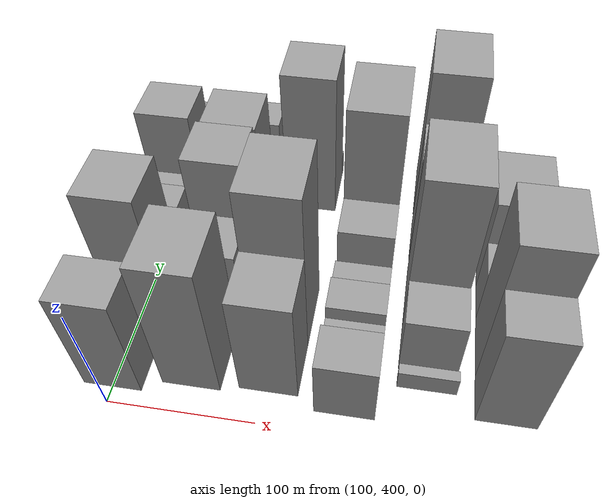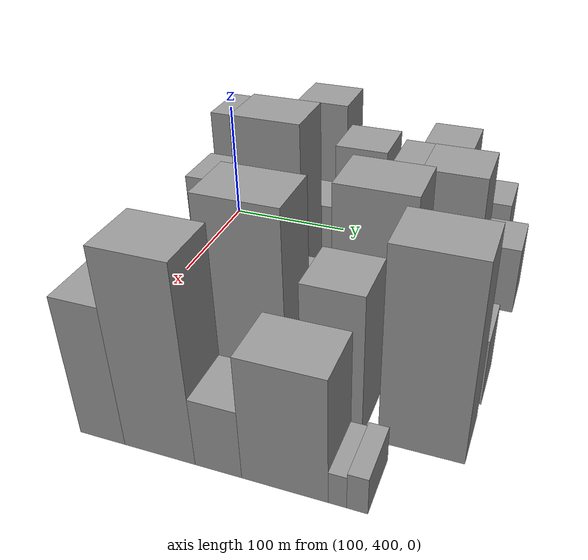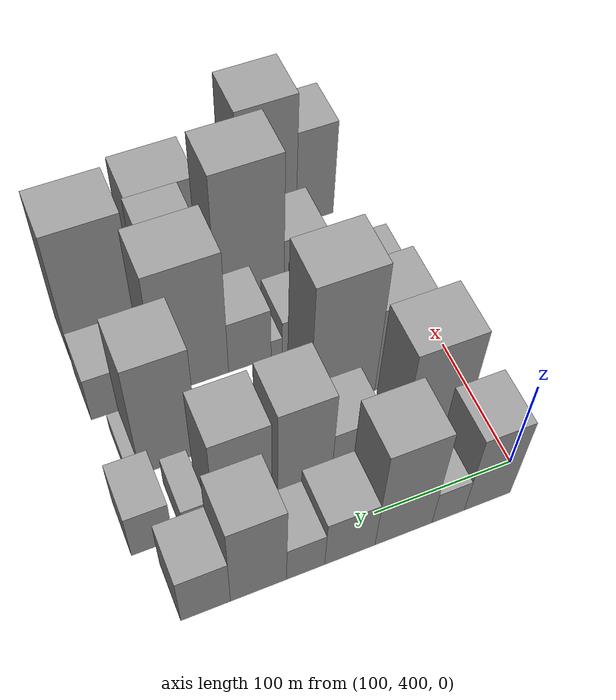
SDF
<sdf version="1.6">
 <world name="default">
  <model name="building_34">
   <static>1</static>
   <pose>100.0000 427.9122 0 0.000000 0.000000 0.000000</pose>
   <link name="link">
    <pose>0 0 48.00 0 0 0</pose>
    <collision name="collision"><geometry><box><size>40.0000 34.0366 96.0000</size></box></geometry></collision>
    <visual name="visual">
     <cast_shadows>0</cast_shadows>
     <geometry><box><size>40.0000 34.0366 96.0000</size></box></geometry>
     <material>
      <script>
       <uri>model://grey_wall/materials/scripts</uri>
       <uri>model://grey_wall/materials/textures</uri>
       <name>vrc/grey_wall</name>
      </script>
     </material>
    </visual>
   </link>
  </model>
  <model name="building_35">
   <static>1</static>
   <pose>100.0000 456.6429 0 0.000000 0.000000 0.000000</pose>
   <link name="link">
    <pose>0 0 21.00 0 0 0</pose>
    <collision name="collision"><geometry><box><size>40.0000 23.4248 42.0000</size></box></geometry></collision>
    <visual name="visual">
     <cast_shadows>0</cast_shadows>
     <geometry><box><size>40.0000 23.4248 42.0000</size></box></geometry>
     <material>
      <script>
       <uri>model://grey_wall/materials/scripts</uri>
       <uri>model://grey_wall/materials/textures</uri>
       <name>vrc/grey_wall</name>
      </script>
     </material>
    </visual>
   </link>
  </model>
  <model name="building_36">
   <static>1</static>
   <pose>100.0000 488.7600 0 0.000000 0.000000 0.000000</pose>
   <link name="link">
    <pose>0 0 61.50 0 0 0</pose>
    <collision name="collision"><geometry><box><size>40.0000 40.8094 123.0000</size></box></geometry></collision>
    <visual name="visual">
     <cast_shadows>0</cast_shadows>
     <geometry><box><size>40.0000 40.8094 123.0000</size></box></geometry>
     <material>
      <script>
       <uri>model://grey_wall/materials/scripts</uri>
       <uri>model://grey_wall/materials/textures</uri>
       <name>vrc/grey_wall</name>
      </script>
     </material>
    </visual>
   </link>
  </model>
  <model name="building_37">
   <static>1</static>
   <pose>100.0000 526.7805 0 0.000000 0.000000 0.000000</pose>
   <link name="link">
    <pose>0 0 30.00 0 0 0</pose>
    <collision name="collision"><geometry><box><size>40.0000 35.2316 60.0000</size></box></geometry></collision>
    <visual name="visual">
     <cast_shadows>0</cast_shadows>
     <geometry><box><size>40.0000 35.2316 60.0000</size></box></geometry>
     <material>
      <script>
       <uri>model://grey_wall/materials/scripts</uri>
       <uri>model://grey_wall/materials/textures</uri>
       <name>vrc/grey_wall</name>
      </script>
     </material>
    </visual>
   </link>
  </model>
  <model name="building_38">
   <static>1</static>
   <pose>100.0000 557.5161 0 0.000000 0.000000 0.000000</pose>
   <link name="link">
    <pose>0 0 22.50 0 0 0</pose>
    <collision name="collision"><geometry><box><size>40.0000 26.2396 45.0000</size></box></geometry></collision>
    <visual name="visual">
     <cast_shadows>0</cast_shadows>
     <geometry><box><size>40.0000 26.2396 45.0000</size></box></geometry>
     <material>
      <script>
       <uri>model://grey_wall/materials/scripts</uri>
       <uri>model://grey_wall/materials/textures</uri>
       <name>vrc/grey_wall</name>
      </script>
     </material>
    </visual>
   </link>
  </model>
  <model name="building_39">
   <static>1</static>
   <pose>100.0000 589.5145 0 0.000000 0.000000 0.000000</pose>
   <link name="link">
    <pose>0 0 51.00 0 0 0</pose>
    <collision name="collision"><geometry><box><size>40.0000 37.7572 102.0000</size></box></geometry></collision>
    <visual name="visual">
     <cast_shadows>0</cast_shadows>
     <geometry><box><size>40.0000 37.7572 102.0000</size></box></geometry>
     <material>
      <script>
       <uri>model://grey_wall/materials/scripts</uri>
       <uri>model://grey_wall/materials/textures</uri>
       <name>vrc/grey_wall</name>
      </script>
     </material>
    </visual>
   </link>
  </model>
  <model name="building_40">
   <static>1</static>
   <pose>100.0000 624.8641 0 0.000000 0.000000 0.000000</pose>
   <link name="link">
    <pose>0 0 30.00 0 0 0</pose>
    <collision name="collision"><geometry><box><size>40.0000 32.9421 60.0000</size></box></geometry></collision>
    <visual name="visual">
     <cast_shadows>0</cast_shadows>
     <geometry><box><size>40.0000 32.9421 60.0000</size></box></geometry>
     <material>
      <script>
       <uri>model://grey_wall/materials/scripts</uri>
       <uri>model://grey_wall/materials/textures</uri>
       <name>vrc/grey_wall</name>
      </script>
     </material>
    </visual>
   </link>
  </model>
  <model name="building_86">
   <static>1</static>
   <pose>152.0000 442.8863 0 0.000000 0.000000 0.000000</pose>
   <link name="link">
    <pose>0 0 63.00 0 0 0</pose>
    <collision name="collision"><geometry><box><size>40.0000 47.3491 126.0000</size></box></geometry></collision>
    <visual name="visual">
     <cast_shadows>0</cast_shadows>
     <geometry><box><size>40.0000 47.3491 126.0000</size></box></geometry>
     <material>
      <script>
       <uri>model://grey_wall/materials/scripts</uri>
       <uri>model://grey_wall/materials/textures</uri>
       <name>vrc/grey_wall</name>
      </script>
     </material>
    </visual>
   </link>
  </model>
  <model name="building_87">
   <static>1</static>
   <pose>152.0000 473.4281 0 0.000000 0.000000 0.000000</pose>
   <link name="link">
    <pose>0 0 9.00 0 0 0</pose>
    <collision name="collision"><geometry><box><size>40.0000 7.7345 18.0000</size></box></geometry></collision>
    <visual name="visual">
     <cast_shadows>0</cast_shadows>
     <geometry><box><size>40.0000 7.7345 18.0000</size></box></geometry>
     <material>
      <script>
       <uri>model://grey_wall/materials/scripts</uri>
       <uri>model://grey_wall/materials/textures</uri>
       <name>vrc/grey_wall</name>
      </script>
     </material>
    </visual>
   </link>
  </model>
  <model name="building_88">
   <static>1</static>
   <pose>152.0000 499.1810 0 0.000000 0.000000 0.000000</pose>
   <link name="link">
    <pose>0 0 31.50 0 0 0</pose>
    <collision name="collision"><geometry><box><size>40.0000 35.7713 63.0000</size></box></geometry></collision>
    <visual name="visual">
     <cast_shadows>0</cast_shadows>
     <geometry><box><size>40.0000 35.7713 63.0000</size></box></geometry>
     <material>
      <script>
       <uri>model://grey_wall/materials/scripts</uri>
       <uri>model://grey_wall/materials/textures</uri>
       <name>vrc/grey_wall</name>
      </script>
     </material>
    </visual>
   </link>
  </model>
  <model name="building_89">
   <static>1</static>
   <pose>152.0000 536.2811 0 0.000000 0.000000 0.000000</pose>
   <link name="link">
    <pose>0 0 57.00 0 0 0</pose>
    <collision name="collision"><geometry><box><size>40.0000 38.4290 114.0000</size></box></geometry></collision>
    <visual name="visual">
     <cast_shadows>0</cast_shadows>
     <geometry><box><size>40.0000 38.4290 114.0000</size></box></geometry>
     <material>
      <script>
       <uri>model://grey_wall/materials/scripts</uri>
       <uri>model://grey_wall/materials/textures</uri>
       <name>vrc/grey_wall</name>
      </script>
     </material>
    </visual>
   </link>
  </model>
  <model name="building_90">
   <static>1</static>
   <pose>152.0000 579.6024 0 0.000000 0.000000 0.000000</pose>
   <link name="link">
    <pose>0 0 54.00 0 0 0</pose>
    <collision name="collision"><geometry><box><size>40.0000 40.2136 108.0000</size></box></geometry></collision>
    <visual name="visual">
     <cast_shadows>0</cast_shadows>
     <geometry><box><size>40.0000 40.2136 108.0000</size></box></geometry>
     <material>
      <script>
       <uri>model://grey_wall/materials/scripts</uri>
       <uri>model://grey_wall/materials/textures</uri>
       <name>vrc/grey_wall</name>
      </script>
     </material>
    </visual>
   </link>
  </model>
  <model name="building_91">
   <static>1</static>
   <pose>152.0000 611.7442 0 0.000000 0.000000 0.000000</pose>
   <link name="link">
    <pose>0 0 18.00 0 0 0</pose>
    <collision name="collision"><geometry><box><size>40.0000 18.0702 36.0000</size></box></geometry></collision>
    <visual name="visual">
     <cast_shadows>0</cast_shadows>
     <geometry><box><size>40.0000 18.0702 36.0000</size></box></geometry>
     <material>
      <script>
       <uri>model://grey_wall/materials/scripts</uri>
       <uri>model://grey_wall/materials/textures</uri>
       <name>vrc/grey_wall</name>
      </script>
     </material>
    </visual>
   </link>
  </model>
  <model name="building_92">
   <static>1</static>
   <pose>152.0000 642.0185 0 0.000000 0.000000 0.000000</pose>
   <link name="link">
    <pose>0 0 27.00 0 0 0</pose>
    <collision name="collision"><geometry><box><size>40.0000 28.4783 54.0000</size></box></geometry></collision>
    <visual name="visual">
     <cast_shadows>0</cast_shadows>
     <geometry><box><size>40.0000 28.4783 54.0000</size></box></geometry>
     <material>
      <script>
       <uri>model://grey_wall/materials/scripts</uri>
       <uri>model://grey_wall/materials/textures</uri>
       <name>vrc/grey_wall</name>
      </script>
     </material>
    </visual>
   </link>
  </model>
  <model name="building_142">
   <static>1</static>
   <pose>204.0000 442.1037 0 0.000000 0.000000 0.000000</pose>
   <link name="link">
    <pose>0 0 49.50 0 0 0</pose>
    <collision name="collision"><geometry><box><size>40.0000 38.1421 99.0000</size></box></geometry></collision>
    <visual name="visual">
     <cast_shadows>0</cast_shadows>
     <geometry><box><size>40.0000 38.1421 99.0000</size></box></geometry>
     <material>
      <script>
       <uri>model://grey_wall/materials/scripts</uri>
       <uri>model://grey_wall/materials/textures</uri>
       <name>vrc/grey_wall</name>
      </script>
     </material>
    </visual>
   </link>
  </model>
  <model name="building_143">
   <static>1</static>
   <pose>204.0000 485.7362 0 0.000000 0.000000 0.000000</pose>
   <link name="link">
    <pose>0 0 75.00 0 0 0</pose>
    <collision name="collision"><geometry><box><size>40.0000 49.1228 150.0000</size></box></geometry></collision>
    <visual name="visual">
     <cast_shadows>0</cast_shadows>
     <geometry><box><size>40.0000 49.1228 150.0000</size></box></geometry>
     <material>
      <script>
       <uri>model://grey_wall/materials/scripts</uri>
       <uri>model://grey_wall/materials/textures</uri>
       <name>vrc/grey_wall</name>
      </script>
     </material>
    </visual>
   </link>
  </model>
  <model name="building_144">
   <static>1</static>
   <pose>204.0000 612.0399 0 0.000000 0.000000 0.000000</pose>
   <link name="link">
    <pose>0 0 66.00 0 0 0</pose>
    <collision name="collision"><geometry><box><size>40.0000 41.8282 132.0000</size></box></geometry></collision>
    <visual name="visual">
     <cast_shadows>0</cast_shadows>
     <geometry><box><size>40.0000 41.8282 132.0000</size></box></geometry>
     <material>
      <script>
       <uri>model://grey_wall/materials/scripts</uri>
       <uri>model://grey_wall/materials/textures</uri>
       <name>vrc/grey_wall</name>
      </script>
     </material>
    </visual>
   </link>
  </model>
  <model name="building_145">
   <static>1</static>
   <pose>204.0000 637.1985 0 0.000000 0.000000 0.000000</pose>
   <link name="link">
    <pose>0 0 10.50 0 0 0</pose>
    <collision name="collision"><geometry><box><size>40.0000 8.4888 21.0000</size></box></geometry></collision>
    <visual name="visual">
     <cast_shadows>0</cast_shadows>
     <geometry><box><size>40.0000 8.4888 21.0000</size></box></geometry>
     <material>
      <script>
       <uri>model://grey_wall/materials/scripts</uri>
       <uri>model://grey_wall/materials/textures</uri>
       <name>vrc/grey_wall</name>
      </script>
     </material>
    </visual>
   </link>
  </model>
  <model name="building_187">
   <static>1</static>
   <pose>256.0000 429.3830 0 0.000000 0.000000 0.000000</pose>
   <link name="link">
    <pose>0 0 28.50 0 0 0</pose>
    <collision name="collision"><geometry><box><size>40.0000 30.1773 57.0000</size></box></geometry></collision>
    <visual name="visual">
     <cast_shadows>0</cast_shadows>
     <geometry><box><size>40.0000 30.1773 57.0000</size></box></geometry>
     <material>
      <script>
       <uri>model://grey_wall/materials/scripts</uri>
       <uri>model://grey_wall/materials/textures</uri>
       <name>vrc/grey_wall</name>
      </script>
     </material>
    </visual>
   </link>
  </model>
  <model name="building_188">
   <static>1</static>
   <pose>256.0000 453.9864 0 0.000000 0.000000 0.000000</pose>
   <link name="link">
    <pose>0 0 18.00 0 0 0</pose>
    <collision name="collision"><geometry><box><size>40.0000 19.0295 36.0000</size></box></geometry></collision>
    <visual name="visual">
     <cast_shadows>0</cast_shadows>
     <geometry><box><size>40.0000 19.0295 36.0000</size></box></geometry>
     <material>
      <script>
       <uri>model://grey_wall/materials/scripts</uri>
       <uri>model://grey_wall/materials/textures</uri>
       <name>vrc/grey_wall</name>
      </script>
     </material>
    </visual>
   </link>
  </model>
  <model name="building_189">
   <static>1</static>
   <pose>256.0000 475.8625 0 0.000000 0.000000 0.000000</pose>
   <link name="link">
    <pose>0 0 24.00 0 0 0</pose>
    <collision name="collision"><geometry><box><size>40.0000 24.7225 48.0000</size></box></geometry></collision>
    <visual name="visual">
     <cast_shadows>0</cast_shadows>
     <geometry><box><size>40.0000 24.7225 48.0000</size></box></geometry>
     <material>
      <script>
       <uri>model://grey_wall/materials/scripts</uri>
       <uri>model://grey_wall/materials/textures</uri>
       <name>vrc/grey_wall</name>
      </script>
     </material>
    </visual>
   </link>
  </model>
  <model name="building_190">
   <static>1</static>
   <pose>256.0000 498.8279 0 0.000000 0.000000 0.000000</pose>
   <link name="link">
    <pose>0 0 19.50 0 0 0</pose>
    <collision name="collision"><geometry><box><size>40.0000 21.2084 39.0000</size></box></geometry></collision>
    <visual name="visual">
     <cast_shadows>0</cast_shadows>
     <geometry><box><size>40.0000 21.2084 39.0000</size></box></geometry>
     <material>
      <script>
       <uri>model://grey_wall/materials/scripts</uri>
       <uri>model://grey_wall/materials/textures</uri>
       <name>vrc/grey_wall</name>
      </script>
     </material>
    </visual>
   </link>
  </model>
  <model name="building_191">
   <static>1</static>
   <pose>256.0000 513.7022 0 0.000000 0.000000 0.000000</pose>
   <link name="link">
    <pose>0 0 10.50 0 0 0</pose>
    <collision name="collision"><geometry><box><size>40.0000 8.5403 21.0000</size></box></geometry></collision>
    <visual name="visual">
     <cast_shadows>0</cast_shadows>
     <geometry><box><size>40.0000 8.5403 21.0000</size></box></geometry>
     <material>
      <script>
       <uri>model://grey_wall/materials/scripts</uri>
       <uri>model://grey_wall/materials/textures</uri>
       <name>vrc/grey_wall</name>
      </script>
     </material>
    </visual>
   </link>
  </model>
  <model name="building_192">
   <static>1</static>
   <pose>256.0000 534.0623 0 0.000000 0.000000 0.000000</pose>
   <link name="link">
    <pose>0 0 30.00 0 0 0</pose>
    <collision name="collision"><geometry><box><size>40.0000 32.1798 60.0000</size></box></geometry></collision>
    <visual name="visual">
     <cast_shadows>0</cast_shadows>
     <geometry><box><size>40.0000 32.1798 60.0000</size></box></geometry>
     <material>
      <script>
       <uri>model://grey_wall/materials/scripts</uri>
       <uri>model://grey_wall/materials/textures</uri>
       <name>vrc/grey_wall</name>
      </script>
     </material>
    </visual>
   </link>
  </model>
  <model name="building_193">
   <static>1</static>
   <pose>256.0000 576.2401 0 0.000000 0.000000 0.000000</pose>
   <link name="link">
    <pose>0 0 70.50 0 0 0</pose>
    <collision name="collision"><geometry><box><size>40.0000 52.1758 141.0000</size></box></geometry></collision>
    <visual name="visual">
     <cast_shadows>0</cast_shadows>
     <geometry><box><size>40.0000 52.1758 141.0000</size></box></geometry>
     <material>
      <script>
       <uri>model://grey_wall/materials/scripts</uri>
       <uri>model://grey_wall/materials/textures</uri>
       <name>vrc/grey_wall</name>
      </script>
     </material>
    </visual>
   </link>
  </model>
  <model name="building_194">
   <static>1</static>
   <pose>256.0000 612.5407 0 0.000000 0.000000 0.000000</pose>
   <link name="link">
    <pose>0 0 18.00 0 0 0</pose>
    <collision name="collision"><geometry><box><size>40.0000 20.4254 36.0000</size></box></geometry></collision>
    <visual name="visual">
     <cast_shadows>0</cast_shadows>
     <geometry><box><size>40.0000 20.4254 36.0000</size></box></geometry>
     <material>
      <script>
       <uri>model://grey_wall/materials/scripts</uri>
       <uri>model://grey_wall/materials/textures</uri>
       <name>vrc/grey_wall</name>
      </script>
     </material>
    </visual>
   </link>
  </model>
  <model name="building_195">
   <static>1</static>
   <pose>256.0000 636.8043 0 0.000000 0.000000 0.000000</pose>
   <link name="link">
    <pose>0 0 25.50 0 0 0</pose>
    <collision name="collision"><geometry><box><size>40.0000 28.1018 51.0000</size></box></geometry></collision>
    <visual name="visual">
     <cast_shadows>0</cast_shadows>
     <geometry><box><size>40.0000 28.1018 51.0000</size></box></geometry>
     <material>
      <script>
       <uri>model://grey_wall/materials/scripts</uri>
       <uri>model://grey_wall/materials/textures</uri>
       <name>vrc/grey_wall</name>
      </script>
     </material>
    </visual>
   </link>
  </model>
  <model name="building_238">
   <static>1</static>
   <pose>308.0000 443.9276 0 0.000000 0.000000 0.000000</pose>
   <link name="link">
    <pose>0 0 9.00 0 0 0</pose>
    <collision name="collision"><geometry><box><size>40.0000 7.4776 18.0000</size></box></geometry></collision>
    <visual name="visual">
     <cast_shadows>0</cast_shadows>
     <geometry><box><size>40.0000 7.4776 18.0000</size></box></geometry>
     <material>
      <script>
       <uri>model://grey_wall/materials/scripts</uri>
       <uri>model://grey_wall/materials/textures</uri>
       <name>vrc/grey_wall</name>
      </script>
     </material>
    </visual>
   </link>
  </model>
  <model name="building_239">
   <static>1</static>
   <pose>308.0000 470.1644 0 0.000000 0.000000 0.000000</pose>
   <link name="link">
    <pose>0 0 28.50 0 0 0</pose>
    <collision name="collision"><geometry><box><size>40.0000 32.9960 57.0000</size></box></geometry></collision>
    <visual name="visual">
     <cast_shadows>0</cast_shadows>
     <geometry><box><size>40.0000 32.9960 57.0000</size></box></geometry>
     <material>
      <script>
       <uri>model://grey_wall/materials/scripts</uri>
       <uri>model://grey_wall/materials/textures</uri>
       <name>vrc/grey_wall</name>
      </script>
     </material>
    </visual>
   </link>
  </model>
  <model name="building_240">
   <static>1</static>
   <pose>308.0000 513.1918 0 0.000000 0.000000 0.000000</pose>
   <link name="link">
    <pose>0 0 75.00 0 0 0</pose>
    <collision name="collision"><geometry><box><size>40.0000 53.0587 150.0000</size></box></geometry></collision>
    <visual name="visual">
     <cast_shadows>0</cast_shadows>
     <geometry><box><size>40.0000 53.0587 150.0000</size></box></geometry>
     <material>
      <script>
       <uri>model://grey_wall/materials/scripts</uri>
       <uri>model://grey_wall/materials/textures</uri>
       <name>vrc/grey_wall</name>
      </script>
     </material>
    </visual>
   </link>
  </model>
  <model name="building_241">
   <static>1</static>
   <pose>308.0000 568.1532 0 0.000000 0.000000 0.000000</pose>
   <link name="link">
    <pose>0 0 52.50 0 0 0</pose>
    <collision name="collision"><geometry><box><size>40.0000 38.8642 105.0000</size></box></geometry></collision>
    <visual name="visual">
     <cast_shadows>0</cast_shadows>
     <geometry><box><size>40.0000 38.8642 105.0000</size></box></geometry>
     <material>
      <script>
       <uri>model://grey_wall/materials/scripts</uri>
       <uri>model://grey_wall/materials/textures</uri>
       <name>vrc/grey_wall</name>
      </script>
     </material>
    </visual>
   </link>
  </model>
  <model name="building_242">
   <static>1</static>
   <pose>308.0000 623.9515 0 0.000000 0.000000 0.000000</pose>
   <link name="link">
    <pose>0 0 70.50 0 0 0</pose>
    <collision name="collision"><geometry><box><size>40.0000 52.7324 141.0000</size></box></geometry></collision>
    <visual name="visual">
     <cast_shadows>0</cast_shadows>
     <geometry><box><size>40.0000 52.7324 141.0000</size></box></geometry>
     <material>
      <script>
       <uri>model://grey_wall/materials/scripts</uri>
       <uri>model://grey_wall/materials/textures</uri>
       <name>vrc/grey_wall</name>
      </script>
     </material>
    </visual>
   </link>
  </model>
  <model name="building_292">
   <static>1</static>
   <pose>360.0000 439.8148 0 0.000000 0.000000 0.000000</pose>
   <link name="link">
    <pose>0 0 51.00 0 0 0</pose>
    <collision name="collision"><geometry><box><size>40.0000 31.0832 102.0000</size></box></geometry></collision>
    <visual name="visual">
     <cast_shadows>0</cast_shadows>
     <geometry><box><size>40.0000 31.0832 102.0000</size></box></geometry>
     <material>
      <script>
       <uri>model://grey_wall/materials/scripts</uri>
       <uri>model://grey_wall/materials/textures</uri>
       <name>vrc/grey_wall</name>
      </script>
     </material>
    </visual>
   </link>
  </model>
  <model name="building_293">
   <static>1</static>
   <pose>360.0000 478.8428 0 0.000000 0.000000 0.000000</pose>
   <link name="link">
    <pose>0 0 70.50 0 0 0</pose>
    <collision name="collision"><geometry><box><size>40.0000 46.9728 141.0000</size></box></geometry></collision>
    <visual name="visual">
     <cast_shadows>0</cast_shadows>
     <geometry><box><size>40.0000 46.9728 141.0000</size></box></geometry>
     <material>
      <script>
       <uri>model://grey_wall/materials/scripts</uri>
       <uri>model://grey_wall/materials/textures</uri>
       <name>vrc/grey_wall</name>
      </script>
     </material>
    </visual>
   </link>
  </model>
  <model name="building_294">
   <static>1</static>
   <pose>360.0000 517.1475 0 0.000000 0.000000 0.000000</pose>
   <link name="link">
    <pose>0 0 25.50 0 0 0</pose>
    <collision name="collision"><geometry><box><size>40.0000 29.6366 51.0000</size></box></geometry></collision>
    <visual name="visual">
     <cast_shadows>0</cast_shadows>
     <geometry><box><size>40.0000 29.6366 51.0000</size></box></geometry>
     <material>
      <script>
       <uri>model://grey_wall/materials/scripts</uri>
       <uri>model://grey_wall/materials/textures</uri>
       <name>vrc/grey_wall</name>
      </script>
     </material>
    </visual>
   </link>
  </model>
  <model name="building_295">
   <static>1</static>
   <pose>360.0000 558.0658 0 0.000000 0.000000 0.000000</pose>
   <link name="link">
    <pose>0 0 45.00 0 0 0</pose>
    <collision name="collision"><geometry><box><size>40.0000 52.1999 90.0000</size></box></geometry></collision>
    <visual name="visual">
     <cast_shadows>0</cast_shadows>
     <geometry><box><size>40.0000 52.1999 90.0000</size></box></geometry>
     <material>
      <script>
       <uri>model://grey_wall/materials/scripts</uri>
       <uri>model://grey_wall/materials/textures</uri>
       <name>vrc/grey_wall</name>
      </script>
     </material>
    </visual>
   </link>
  </model>
  <model name="building_296">
   <static>1</static>
   <pose>360.0000 589.5629 0 0.000000 0.000000 0.000000</pose>
   <link name="link">
    <pose>0 0 12.00 0 0 0</pose>
    <collision name="collision"><geometry><box><size>40.0000 10.7945 24.0000</size></box></geometry></collision>
    <visual name="visual">
     <cast_shadows>0</cast_shadows>
     <geometry><box><size>40.0000 10.7945 24.0000</size></box></geometry>
     <material>
      <script>
       <uri>model://grey_wall/materials/scripts</uri>
       <uri>model://grey_wall/materials/textures</uri>
       <name>vrc/grey_wall</name>
      </script>
     </material>
    </visual>
   </link>
  </model>
  <model name="building_297">
   <static>1</static>
   <pose>360.0000 601.0295 0 0.000000 0.000000 0.000000</pose>
   <link name="link">
    <pose>0 0 13.50 0 0 0</pose>
    <collision name="collision"><geometry><box><size>40.0000 12.1386 27.0000</size></box></geometry></collision>
    <visual name="visual">
     <cast_shadows>0</cast_shadows>
     <geometry><box><size>40.0000 12.1386 27.0000</size></box></geometry>
     <material>
      <script>
       <uri>model://grey_wall/materials/scripts</uri>
       <uri>model://grey_wall/materials/textures</uri>
       <name>vrc/grey_wall</name>
      </script>
     </material>
    </visual>
   </link>
  </model>
 </world>
</sdf>
